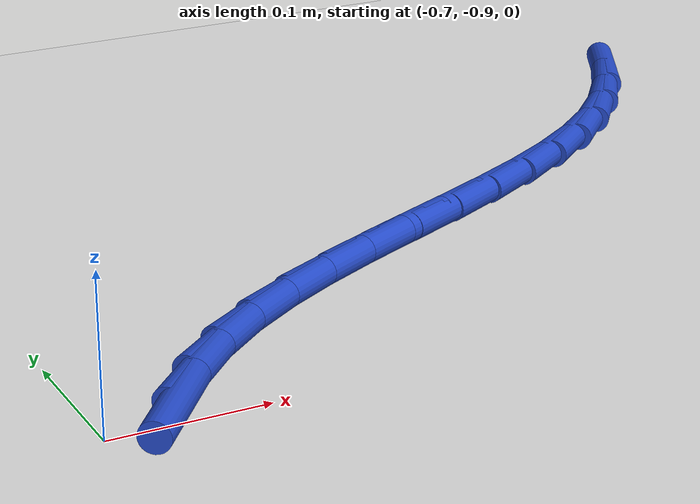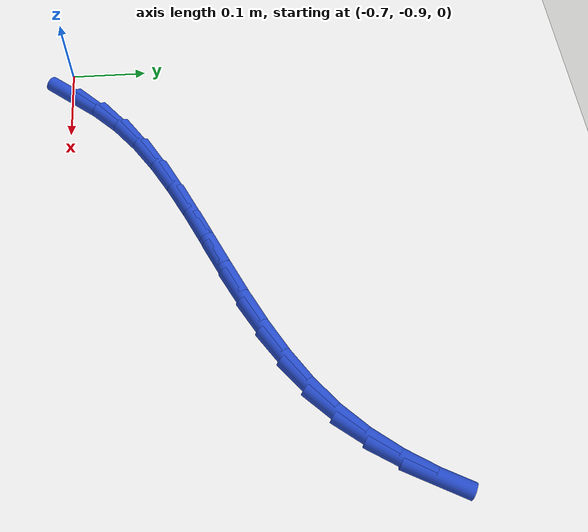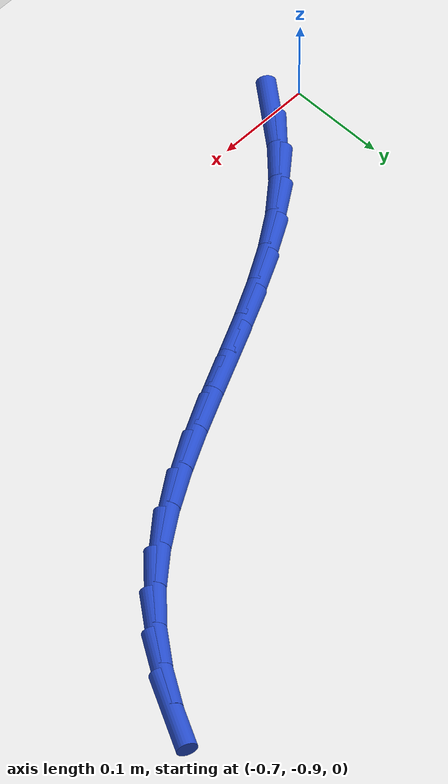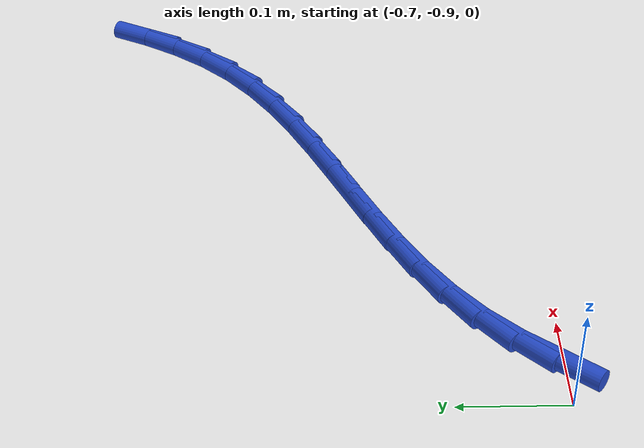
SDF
<sdf version="1.6">
 <world name="default">
  <model name="ground_plane">
   <static>1</static>
   <link name="link">
    <collision name="collision">
     <geometry><plane><normal>0 0 1</normal><size>100 100</size></plane></geometry>
     <surface><friction><ode><mu>100</mu><mu2>50</mu2></ode></friction></surface>
    </collision>
    <visual name="visual">
     <cast_shadows>0</cast_shadows>
     <geometry><plane><normal>0 0 1</normal><size>100 100</size></plane></geometry>
     <material>
      <script><uri>file://media/materials/scripts/gazebo.material</uri><name>Gazebo/WhiteGlow</name></script>
     </material>
    </visual>
   </link>
  </model>
  <model name="line">
   <link name="link_172">
    <pose>-0.6570601922769672 -0.8957993788842403 0.01 0 1.57 0.9060424505117621</pose>
    <collision name="collision">
     <geometry><cylinder><radius>0.01</radius><length>0.08</length></cylinder></geometry>
    </collision>
    <visual name="visual">
     <material>
      <script><name>Gazebo/Blue</name><uri>file://media/materials/scripts/gazebo.material</uri></script>
     </material>
     <geometry><cylinder><radius>0.01</radius><length>0.08</length></cylinder></geometry>
    </visual>
   </link>
   <link name="link_173">
    <pose>-0.6316646972404751 -0.8633968540327296 0.01 0 1.57 0.8049568248724187</pose>
    <collision name="collision">
     <geometry><cylinder><radius>0.01</radius><length>0.08</length></cylinder></geometry>
    </collision>
    <visual name="visual">
     <material>
      <script><name>Gazebo/Blue</name><uri>file://media/materials/scripts/gazebo.material</uri></script>
     </material>
     <geometry><cylinder><radius>0.01</radius><length>0.08</length></cylinder></geometry>
    </visual>
   </link>
   <link name="link_174">
    <pose>-0.6033523755155297 -0.8339547897620221 0.01 0 1.57 0.6894454018159345</pose>
    <collision name="collision">
     <geometry><cylinder><radius>0.01</radius><length>0.08</length></cylinder></geometry>
    </collision>
    <visual name="visual">
     <material>
      <script><name>Gazebo/Blue</name><uri>file://media/materials/scripts/gazebo.material</uri></script>
     </material>
     <geometry><cylinder><radius>0.01</radius><length>0.08</length></cylinder></geometry>
    </visual>
   </link>
   <link name="link_175">
    <pose>-0.571645485857791 -0.8078154982635857 0.01 0 1.57 0.593854160021468</pose>
    <collision name="collision">
     <geometry><cylinder><radius>0.01</radius><length>0.08</length></cylinder></geometry>
    </collision>
    <visual name="visual">
     <material>
      <script><name>Gazebo/Blue</name><uri>file://media/materials/scripts/gazebo.material</uri></script>
     </material>
     <geometry><cylinder><radius>0.01</radius><length>0.08</length></cylinder></geometry>
    </visual>
   </link>
   <link name="link_176">
    <pose>-0.5370504957301899 -0.7844586175518735 0.01 0 1.57 0.5220591457336985</pose>
    <collision name="collision">
     <geometry><cylinder><radius>0.01</radius><length>0.08</length></cylinder></geometry>
    </collision>
    <visual name="visual">
     <material>
      <script><name>Gazebo/Blue</name><uri>file://media/materials/scripts/gazebo.material</uri></script>
     </material>
     <geometry><cylinder><radius>0.01</radius><length>0.08</length></cylinder></geometry>
    </visual>
   </link>
   <link name="link_177">
    <pose>-0.5001963342810383 -0.7632564460772083 0.01 0 1.57 0.47260730686715513</pose>
    <collision name="collision">
     <geometry><cylinder><radius>0.01</radius><length>0.08</length></cylinder></geometry>
    </collision>
    <visual name="visual">
     <material>
      <script><name>Gazebo/Blue</name><uri>file://media/materials/scripts/gazebo.material</uri></script>
     </material>
     <geometry><cylinder><radius>0.01</radius><length>0.08</length></cylinder></geometry>
    </visual>
   </link>
   <link name="link_178">
    <pose>-0.4617119306586476 -0.7435812822899132 0.01 0 1.57 0.4438644618915091</pose>
    <collision name="collision">
     <geometry><cylinder><radius>0.01</radius><length>0.08</length></cylinder></geometry>
    </collision>
    <visual name="visual">
     <material>
      <script><name>Gazebo/Blue</name><uri>file://media/materials/scripts/gazebo.material</uri></script>
     </material>
     <geometry><cylinder><radius>0.01</radius><length>0.08</length></cylinder></geometry>
    </visual>
   </link>
   <link name="link_179">
    <pose>-0.42222621401132987 -0.724805424640311 0.01 0 1.57 0.4346435148952946</pose>
    <collision name="collision">
     <geometry><cylinder><radius>0.01</radius><length>0.08</length></cylinder></geometry>
    </collision>
    <visual name="visual">
     <material>
      <script><name>Gazebo/Blue</name><uri>file://media/materials/scripts/gazebo.material</uri></script>
     </material>
     <geometry><cylinder><radius>0.01</radius><length>0.08</length></cylinder></geometry>
    </visual>
   </link>
   <link name="link_180">
    <pose>-0.3823681134873969 -0.7063011715787243 0.01 0 1.57 0.444469980465604</pose>
    <collision name="collision">
     <geometry><cylinder><radius>0.01</radius><length>0.08</length></cylinder></geometry>
    </collision>
    <visual name="visual">
     <material>
      <script><name>Gazebo/Blue</name><uri>file://media/materials/scripts/gazebo.material</uri></script>
     </material>
     <geometry><cylinder><radius>0.01</radius><length>0.08</length></cylinder></geometry>
    </visual>
   </link>
   <link name="link_181">
    <pose>-0.34276655823516033 -0.6874408215554763 0.01 0 1.57 0.4736416544792471</pose>
    <collision name="collision">
     <geometry><cylinder><radius>0.01</radius><length>0.08</length></cylinder></geometry>
    </collision>
    <visual name="visual">
     <material>
      <script><name>Gazebo/Blue</name><uri>file://media/materials/scripts/gazebo.material</uri></script>
     </material>
     <geometry><cylinder><radius>0.01</radius><length>0.08</length></cylinder></geometry>
    </visual>
   </link>
   <link name="link_182">
    <pose>-0.3040504774029321 -0.6675966730208895 0.01 0 1.57 0.5231400097683313</pose>
    <collision name="collision">
     <geometry><cylinder><radius>0.01</radius><length>0.08</length></cylinder></geometry>
    </collision>
    <visual name="visual">
     <material>
      <script><name>Gazebo/Blue</name><uri>file://media/materials/scripts/gazebo.material</uri></script>
     </material>
     <geometry><cylinder><radius>0.01</radius><length>0.08</length></cylinder></geometry>
    </visual>
   </link>
   <link name="link_183">
    <pose>-0.2668488001390237 -0.646141024425287 0.01 0 1.57 0.5943464584796857</pose>
    <collision name="collision">
     <geometry><cylinder><radius>0.01</radius><length>0.08</length></cylinder></geometry>
    </collision>
    <visual name="visual">
     <material>
      <script><name>Gazebo/Blue</name><uri>file://media/materials/scripts/gazebo.material</uri></script>
     </material>
     <geometry><cylinder><radius>0.01</radius><length>0.08</length></cylinder></geometry>
    </visual>
   </link>
   <link name="link_184">
    <pose>-0.23179045559174705 -0.6224461742189916 0.01 0 1.57 0.6884298335737483</pose>
    <collision name="collision">
     <geometry><cylinder><radius>0.01</radius><length>0.08</length></cylinder></geometry>
    </collision>
    <visual name="visual">
     <material>
      <script><name>Gazebo/Blue</name><uri>file://media/materials/scripts/gazebo.material</uri></script>
     </material>
     <geometry><cylinder><radius>0.01</radius><length>0.08</length></cylinder></geometry>
    </visual>
   </link>
   <link name="link_185">
    <pose>-0.19950437290941397 -0.5958844208523262 0.01 0 1.57 0.803079622890553</pose>
    <collision name="collision">
     <geometry><cylinder><radius>0.01</radius><length>0.08</length></cylinder></geometry>
    </collision>
    <visual name="visual">
     <material>
      <script><name>Gazebo/Blue</name><uri>file://media/materials/scripts/gazebo.material</uri></script>
     </material>
     <geometry><cylinder><radius>0.01</radius><length>0.08</length></cylinder></geometry>
    </visual>
   </link>
   <link name="link_186">
    <pose>-0.17056182805753609 -0.5658998499978551 0.01 0 1.57 0.9151488823941474</pose>
    <collision name="collision">
     <geometry><cylinder><radius>0.01</radius><length>0.08</length></cylinder></geometry>
    </collision>
    <visual name="visual">
     <material>
      <script><name>Gazebo/Blue</name><uri>file://media/materials/scripts/gazebo.material</uri></script>
     </material>
     <geometry><cylinder><radius>0.01</radius><length>0.08</length></cylinder></geometry>
    </visual>
   </link>
   <link name="link_187">
    <pose>-0.14497462811206202 -0.5326331735257203 0.01 0 1.57 1.01171328760083</pose>
    <collision name="collision">
     <geometry><cylinder><radius>0.01</radius><length>0.08</length></cylinder></geometry>
    </collision>
    <visual name="visual">
     <material>
      <script><name>Gazebo/Blue</name><uri>file://media/materials/scripts/gazebo.material</uri></script>
     </material>
     <geometry><cylinder><radius>0.01</radius><length>0.08</length></cylinder></geometry>
    </visual>
   </link>
   <link name="link_188">
    <pose>-0.12244009154470276 -0.4966166907645241 0.01 0 1.57 1.0931598453000573</pose>
    <collision name="collision">
     <geometry><cylinder><radius>0.01</radius><length>0.08</length></cylinder></geometry>
    </collision>
    <visual name="visual">
     <material>
      <script><name>Gazebo/Blue</name><uri>file://media/materials/scripts/gazebo.material</uri></script>
     </material>
     <geometry><cylinder><radius>0.01</radius><length>0.08</length></cylinder></geometry>
    </visual>
   </link>
  </model>
 </world>
</sdf>
